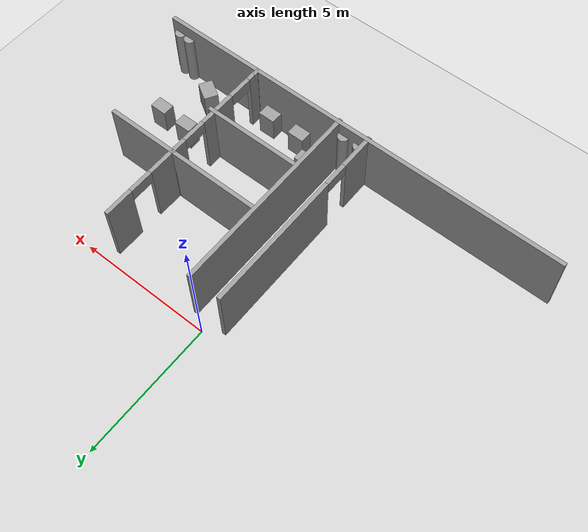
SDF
<sdf version="1.7">
 <world name="default">
  <model name="ground_plane">
   <static>1</static>
   <link name="link">
    <collision name="collision">
     <geometry><plane><normal>0 0 1</normal><size>100 100</size></plane></geometry>
     <surface>
      <contact><collide_bitmask>65535</collide_bitmask></contact>
      <friction><ode><mu>100</mu><mu2>50</mu2></ode></friction>
     </surface>
    </collision>
    <visual name="visual">
     <cast_shadows>0</cast_shadows>
     <geometry><plane><normal>0 0 1</normal><size>100 100</size></plane></geometry>
     <material>
      <script><uri>file://media/materials/scripts/gazebo.material</uri><name>Gazebo/Grey</name></script>
     </material>
    </visual>
   </link>
  </model>
  <model name="Untitled_0_clone_0">
   <link name="link_0">
    <inertial>
     <mass>1</mass>
     <inertia><ixx>0.145833</ixx><ixy>0</ixy><ixz>0</ixz><iyy>0.145833</iyy><iyz>0</iyz><izz>0.125</izz></inertia>
    </inertial>
    <visual name="visual">
     <geometry><cylinder><radius>0.2</radius><length>2</length></cylinder></geometry>
     <material>
      <lighting>1</lighting>
      <script><uri>file://media/materials/scripts/gazebo.material</uri><name>Gazebo/Grey</name></script>
      <shader type="pixel"><normal_map>__default__</normal_map></shader>
      <ambient>0.3 0.3 0.3 1</ambient>
      <diffuse>0.7 0.7 0.7 1</diffuse>
      <specular>0.01 0.01 0.01 1</specular>
      <emissive>0 0 0 1</emissive>
     </material>
    </visual>
    <collision name="collision">
     <geometry><cylinder><radius>0.2</radius><length>2</length></cylinder></geometry>
     <surface>
      <friction>
       <ode><mu>1</mu><mu2>1</mu2><fdir1>0 0 0</fdir1><slip1>0</slip1><slip2>0</slip2></ode>
       <torsional>
        <coefficient>1</coefficient>
        <patch_radius>0</patch_radius>
        <surface_radius>0</surface_radius>
        <use_patch_radius>1</use_patch_radius>
        <ode><slip>0</slip></ode>
       </torsional>
      </friction>
      <bounce><restitution_coefficient>0</restitution_coefficient><threshold>1e+06</threshold></bounce>
      <contact>
       <collide_without_contact>0</collide_without_contact>
       <collide_without_contact_bitmask>1</collide_without_contact_bitmask>
       <collide_bitmask>1</collide_bitmask>
       <ode>
        <soft_cfm>0</soft_cfm>
        <soft_erp>0.2</soft_erp>
        <kp>1e+13</kp>
        <kd>1</kd>
        <max_vel>0.01</max_vel>
        <min_depth>0</min_depth>
       </ode>
       <bullet>
        <split_impulse>1</split_impulse>
        <split_impulse_penetration_threshold>-0.01</split_impulse_penetration_threshold>
        <soft_cfm>0</soft_cfm>
        <soft_erp>0.2</soft_erp>
        <kp>1e+13</kp>
        <kd>1</kd>
       </bullet>
      </contact>
     </surface>
    </collision>
   </link>
   <static>0</static>
   <pose>7.60637 -7.67249 1 0 0 -0.232737</pose>
  </model>
  <model name="Untitled_0_clone_1">
   <link name="link_0">
    <inertial>
     <mass>1</mass>
     <inertia><ixx>0.145833</ixx><ixy>0</ixy><ixz>0</ixz><iyy>0.145833</iyy><iyz>0</iyz><izz>0.125</izz></inertia>
    </inertial>
    <visual name="visual">
     <geometry><cylinder><radius>0.2</radius><length>2</length></cylinder></geometry>
     <material>
      <lighting>1</lighting>
      <script><uri>file://media/materials/scripts/gazebo.material</uri><name>Gazebo/Grey</name></script>
      <shader type="pixel"><normal_map>__default__</normal_map></shader>
      <ambient>0.3 0.3 0.3 1</ambient>
      <diffuse>0.7 0.7 0.7 1</diffuse>
      <specular>0.01 0.01 0.01 1</specular>
      <emissive>0 0 0 1</emissive>
     </material>
    </visual>
    <collision name="collision">
     <geometry><cylinder><radius>0.2</radius><length>2</length></cylinder></geometry>
     <surface>
      <friction>
       <ode><mu>1</mu><mu2>1</mu2><fdir1>0 0 0</fdir1><slip1>0</slip1><slip2>0</slip2></ode>
       <torsional>
        <coefficient>1</coefficient>
        <patch_radius>0</patch_radius>
        <surface_radius>0</surface_radius>
        <use_patch_radius>1</use_patch_radius>
        <ode><slip>0</slip></ode>
       </torsional>
      </friction>
      <bounce><restitution_coefficient>0</restitution_coefficient><threshold>1e+06</threshold></bounce>
      <contact>
       <collide_without_contact>0</collide_without_contact>
       <collide_without_contact_bitmask>1</collide_without_contact_bitmask>
       <collide_bitmask>1</collide_bitmask>
       <ode>
        <soft_cfm>0</soft_cfm>
        <soft_erp>0.2</soft_erp>
        <kp>1e+13</kp>
        <kd>1</kd>
        <max_vel>0.01</max_vel>
        <min_depth>0</min_depth>
       </ode>
       <bullet>
        <split_impulse>1</split_impulse>
        <split_impulse_penetration_threshold>-0.01</split_impulse_penetration_threshold>
        <soft_cfm>0</soft_cfm>
        <soft_erp>0.2</soft_erp>
        <kp>1e+13</kp>
        <kd>1</kd>
       </bullet>
      </contact>
     </surface>
    </collision>
   </link>
   <static>0</static>
   <pose>7.17536 -7.6593 0.99999 0 -0 0.484716</pose>
  </model>
  <model name="Untitled_0_clone_2">
   <link name="link_0">
    <inertial>
     <mass>1</mass>
     <inertia><ixx>0.145833</ixx><ixy>0</ixy><ixz>0</ixz><iyy>0.145833</iyy><iyz>0</iyz><izz>0.125</izz></inertia>
    </inertial>
    <visual name="visual">
     <geometry><cylinder><radius>0.2</radius><length>2</length></cylinder></geometry>
     <material>
      <lighting>1</lighting>
      <script><uri>file://media/materials/scripts/gazebo.material</uri><name>Gazebo/Grey</name></script>
      <shader type="pixel"><normal_map>__default__</normal_map></shader>
      <ambient>0.3 0.3 0.3 1</ambient>
      <diffuse>0.7 0.7 0.7 1</diffuse>
      <specular>0.01 0.01 0.01 1</specular>
      <emissive>0 0 0 1</emissive>
     </material>
    </visual>
    <collision name="collision">
     <geometry><cylinder><radius>0.2</radius><length>2</length></cylinder></geometry>
     <surface>
      <friction>
       <ode><mu>1</mu><mu2>1</mu2><fdir1>0 0 0</fdir1><slip1>0</slip1><slip2>0</slip2></ode>
       <torsional>
        <coefficient>1</coefficient>
        <patch_radius>0</patch_radius>
        <surface_radius>0</surface_radius>
        <use_patch_radius>1</use_patch_radius>
        <ode><slip>0</slip></ode>
       </torsional>
      </friction>
      <bounce><restitution_coefficient>0</restitution_coefficient><threshold>1e+06</threshold></bounce>
      <contact>
       <collide_without_contact>0</collide_without_contact>
       <collide_without_contact_bitmask>1</collide_without_contact_bitmask>
       <collide_bitmask>1</collide_bitmask>
       <ode>
        <soft_cfm>0</soft_cfm>
        <soft_erp>0.2</soft_erp>
        <kp>1e+13</kp>
        <kd>1</kd>
        <max_vel>0.01</max_vel>
        <min_depth>0</min_depth>
       </ode>
       <bullet>
        <split_impulse>1</split_impulse>
        <split_impulse_penetration_threshold>-0.01</split_impulse_penetration_threshold>
        <soft_cfm>0</soft_cfm>
        <soft_erp>0.2</soft_erp>
        <kp>1e+13</kp>
        <kd>1</kd>
       </bullet>
      </contact>
     </surface>
    </collision>
   </link>
   <static>0</static>
   <pose>-0.314447 -7.67263 1 0 -0 0.09711</pose>
  </model>
  <model name="Untitled_0_clone_3">
   <link name="link_0">
    <inertial>
     <mass>1</mass>
     <inertia><ixx>0.145833</ixx><ixy>0</ixy><ixz>0</ixz><iyy>0.145833</iyy><iyz>0</iyz><izz>0.125</izz></inertia>
    </inertial>
    <visual name="visual">
     <geometry><cylinder><radius>0.2</radius><length>2</length></cylinder></geometry>
     <material>
      <lighting>1</lighting>
      <script><uri>file://media/materials/scripts/gazebo.material</uri><name>Gazebo/Grey</name></script>
      <shader type="pixel"><normal_map>__default__</normal_map></shader>
      <ambient>0.3 0.3 0.3 1</ambient>
      <diffuse>0.7 0.7 0.7 1</diffuse>
      <specular>0.01 0.01 0.01 1</specular>
      <emissive>0 0 0 1</emissive>
     </material>
    </visual>
    <collision name="collision">
     <geometry><cylinder><radius>0.2</radius><length>2</length></cylinder></geometry>
     <surface>
      <friction>
       <ode><mu>1</mu><mu2>1</mu2><fdir1>0 0 0</fdir1><slip1>0</slip1><slip2>0</slip2></ode>
       <torsional>
        <coefficient>1</coefficient>
        <patch_radius>0</patch_radius>
        <surface_radius>0</surface_radius>
        <use_patch_radius>1</use_patch_radius>
        <ode><slip>0</slip></ode>
       </torsional>
      </friction>
      <bounce><restitution_coefficient>0</restitution_coefficient><threshold>1e+06</threshold></bounce>
      <contact>
       <collide_without_contact>0</collide_without_contact>
       <collide_without_contact_bitmask>1</collide_without_contact_bitmask>
       <collide_bitmask>1</collide_bitmask>
       <ode>
        <soft_cfm>0</soft_cfm>
        <soft_erp>0.2</soft_erp>
        <kp>1e+13</kp>
        <kd>1</kd>
        <max_vel>0.01</max_vel>
        <min_depth>0</min_depth>
       </ode>
       <bullet>
        <split_impulse>1</split_impulse>
        <split_impulse_penetration_threshold>-0.01</split_impulse_penetration_threshold>
        <soft_cfm>0</soft_cfm>
        <soft_erp>0.2</soft_erp>
        <kp>1e+13</kp>
        <kd>1</kd>
       </bullet>
      </contact>
     </surface>
    </collision>
   </link>
   <static>0</static>
   <pose>0.314516 -7.6726 1 0 0 -0.024788</pose>
  </model>
  <model name="Untitled">
   <link name="Wall_2">
    <pose>-0.072532 -7.96044 0 0 -0 3.14159</pose>
    <visual name="Wall_2_Visual">
     <pose>0 0 1.25 0 -0 0</pose>
     <geometry><box><size>16 0.15 2.5</size></box></geometry>
     <material>
      <script><uri>file://media/materials/scripts/gazebo.material</uri><name>Gazebo/Grey</name></script>
      <ambient>1 1 1 1</ambient>
      <shader type="pixel"/>
     </material>
     <meta><layer>0</layer></meta>
    </visual>
    <collision name="Wall_2_Collision">
     <pose>0 0 1.25 0 -0 0</pose>
     <geometry><box><size>16 0.15 2.5</size></box></geometry>
     <surface>
      <friction>
       <ode><mu>1</mu><mu2>1</mu2><fdir1>0 0 0</fdir1><slip1>0</slip1><slip2>0</slip2></ode>
       <torsional>
        <coefficient>1</coefficient>
        <patch_radius>0</patch_radius>
        <surface_radius>0</surface_radius>
        <use_patch_radius>1</use_patch_radius>
        <ode><slip>0</slip></ode>
       </torsional>
      </friction>
      <bounce><restitution_coefficient>0</restitution_coefficient><threshold>1e+06</threshold></bounce>
      <contact>
       <collide_without_contact>0</collide_without_contact>
       <collide_without_contact_bitmask>1</collide_without_contact_bitmask>
       <collide_bitmask>1</collide_bitmask>
       <ode>
        <soft_cfm>0</soft_cfm>
        <soft_erp>0.2</soft_erp>
        <kp>1e+13</kp>
        <kd>1</kd>
        <max_vel>0.01</max_vel>
        <min_depth>0</min_depth>
       </ode>
       <bullet>
        <split_impulse>1</split_impulse>
        <split_impulse_penetration_threshold>-0.01</split_impulse_penetration_threshold>
        <soft_cfm>0</soft_cfm>
        <soft_erp>0.2</soft_erp>
        <kp>1e+13</kp>
        <kd>1</kd>
       </bullet>
      </contact>
     </surface>
    </collision>
   </link>
   <link name="Wall_24">
    <pose>-0.620932 -4.32411 0 0 0 -1.5708</pose>
    <visual name="Wall_24_Visual_0">
     <pose>-1.14448 0 1.25 0 -0 0</pose>
     <geometry><box><size>5.21104 0.15 2.5</size></box></geometry>
     <material>
      <script><uri>file://media/materials/scripts/gazebo.material</uri><name>Gazebo/Grey</name></script>
      <ambient>1 1 1 1</ambient>
      <shader type="pixel"/>
     </material>
     <meta><layer>0</layer></meta>
    </visual>
    <visual name="Wall_24_Visual_1">
     <pose>3.05552 0 1.25 0 -0 0</pose>
     <geometry><box><size>1.38896 0.15 2.5</size></box></geometry>
     <material>
      <script><uri>file://media/materials/scripts/gazebo.material</uri><name>Gazebo/Grey</name></script>
      <ambient>1 1 1 1</ambient>
      <shader type="pixel"/>
     </material>
     <meta><layer>0</layer></meta>
    </visual>
    <visual name="Wall_24_Visual_2">
     <pose>1.91104 0 2.25 0 -0 0</pose>
     <geometry><box><size>0.9 0.15 0.5</size></box></geometry>
     <material>
      <script><uri>file://media/materials/scripts/gazebo.material</uri><name>Gazebo/Grey</name></script>
      <ambient>1 1 1 1</ambient>
      <shader type="pixel"/>
     </material>
     <meta><layer>0</layer></meta>
    </visual>
    <collision name="Wall_24_Collision_0">
     <pose>-1.14448 0 1.25 0 -0 0</pose>
     <geometry><box><size>5.21104 0.15 2.5</size></box></geometry>
     <surface>
      <friction>
       <ode><mu>1</mu><mu2>1</mu2><fdir1>0 0 0</fdir1><slip1>0</slip1><slip2>0</slip2></ode>
       <torsional>
        <coefficient>1</coefficient>
        <patch_radius>0</patch_radius>
        <surface_radius>0</surface_radius>
        <use_patch_radius>1</use_patch_radius>
        <ode><slip>0</slip></ode>
       </torsional>
      </friction>
      <bounce><restitution_coefficient>0</restitution_coefficient><threshold>1e+06</threshold></bounce>
      <contact>
       <collide_without_contact>0</collide_without_contact>
       <collide_without_contact_bitmask>1</collide_without_contact_bitmask>
       <collide_bitmask>1</collide_bitmask>
       <ode>
        <soft_cfm>0</soft_cfm>
        <soft_erp>0.2</soft_erp>
        <kp>1e+13</kp>
        <kd>1</kd>
        <max_vel>0.01</max_vel>
        <min_depth>0</min_depth>
       </ode>
       <bullet>
        <split_impulse>1</split_impulse>
        <split_impulse_penetration_threshold>-0.01</split_impulse_penetration_threshold>
        <soft_cfm>0</soft_cfm>
        <soft_erp>0.2</soft_erp>
        <kp>1e+13</kp>
        <kd>1</kd>
       </bullet>
      </contact>
     </surface>
    </collision>
    <collision name="Wall_24_Collision_1">
     <pose>3.05552 0 1.25 0 -0 0</pose>
     <geometry><box><size>1.38896 0.15 2.5</size></box></geometry>
     <surface>
      <friction>
       <ode><mu>1</mu><mu2>1</mu2><fdir1>0 0 0</fdir1><slip1>0</slip1><slip2>0</slip2></ode>
       <torsional>
        <coefficient>1</coefficient>
        <patch_radius>0</patch_radius>
        <surface_radius>0</surface_radius>
        <use_patch_radius>1</use_patch_radius>
        <ode><slip>0</slip></ode>
       </torsional>
      </friction>
      <bounce><restitution_coefficient>0</restitution_coefficient><threshold>1e+06</threshold></bounce>
      <contact>
       <collide_without_contact>0</collide_without_contact>
       <collide_without_contact_bitmask>1</collide_without_contact_bitmask>
       <collide_bitmask>1</collide_bitmask>
       <ode>
        <soft_cfm>0</soft_cfm>
        <soft_erp>0.2</soft_erp>
        <kp>1e+13</kp>
        <kd>1</kd>
        <max_vel>0.01</max_vel>
        <min_depth>0</min_depth>
       </ode>
       <bullet>
        <split_impulse>1</split_impulse>
        <split_impulse_penetration_threshold>-0.01</split_impulse_penetration_threshold>
        <soft_cfm>0</soft_cfm>
        <soft_erp>0.2</soft_erp>
        <kp>1e+13</kp>
        <kd>1</kd>
       </bullet>
      </contact>
     </surface>
    </collision>
    <collision name="Wall_24_Collision_2">
     <pose>1.91104 0 2.25 0 -0 0</pose>
     <geometry><box><size>0.9 0.15 0.5</size></box></geometry>
     <surface>
      <friction>
       <ode><mu>1</mu><mu2>1</mu2><fdir1>0 0 0</fdir1><slip1>0</slip1><slip2>0</slip2></ode>
       <torsional>
        <coefficient>1</coefficient>
        <patch_radius>0</patch_radius>
        <surface_radius>0</surface_radius>
        <use_patch_radius>1</use_patch_radius>
        <ode><slip>0</slip></ode>
       </torsional>
      </friction>
      <bounce><restitution_coefficient>0</restitution_coefficient><threshold>1e+06</threshold></bounce>
      <contact>
       <collide_without_contact>0</collide_without_contact>
       <collide_without_contact_bitmask>1</collide_without_contact_bitmask>
       <collide_bitmask>1</collide_bitmask>
       <ode>
        <soft_cfm>0</soft_cfm>
        <soft_erp>0.2</soft_erp>
        <kp>1e+13</kp>
        <kd>1</kd>
        <max_vel>0.01</max_vel>
        <min_depth>0</min_depth>
       </ode>
       <bullet>
        <split_impulse>1</split_impulse>
        <split_impulse_penetration_threshold>-0.01</split_impulse_penetration_threshold>
        <soft_cfm>0</soft_cfm>
        <soft_erp>0.2</soft_erp>
        <kp>1e+13</kp>
        <kd>1</kd>
       </bullet>
      </contact>
     </surface>
    </collision>
   </link>
   <link name="Wall_42">
    <pose>0.567732 -4.32411 0 0 0 -1.5708</pose>
    <visual name="Wall_42_Visual">
     <pose>0 0 1.25 0 -0 0</pose>
     <geometry><box><size>7.5 0.15 2.5</size></box></geometry>
     <material>
      <script><uri>file://media/materials/scripts/gazebo.material</uri><name>Gazebo/Grey</name></script>
      <ambient>1 1 1 1</ambient>
      <shader type="pixel"/>
     </material>
     <meta><layer>0</layer></meta>
    </visual>
    <collision name="Wall_42_Collision">
     <pose>0 0 1.25 0 -0 0</pose>
     <geometry><box><size>7.5 0.15 2.5</size></box></geometry>
     <surface>
      <friction>
       <ode><mu>1</mu><mu2>1</mu2><fdir1>0 0 0</fdir1><slip1>0</slip1><slip2>0</slip2></ode>
       <torsional>
        <coefficient>1</coefficient>
        <patch_radius>0</patch_radius>
        <surface_radius>0</surface_radius>
        <use_patch_radius>1</use_patch_radius>
        <ode><slip>0</slip></ode>
       </torsional>
      </friction>
      <bounce><restitution_coefficient>0</restitution_coefficient><threshold>1e+06</threshold></bounce>
      <contact>
       <collide_without_contact>0</collide_without_contact>
       <collide_without_contact_bitmask>1</collide_without_contact_bitmask>
       <collide_bitmask>1</collide_bitmask>
       <ode>
        <soft_cfm>0</soft_cfm>
        <soft_erp>0.2</soft_erp>
        <kp>1e+13</kp>
        <kd>1</kd>
        <max_vel>0.01</max_vel>
        <min_depth>0</min_depth>
       </ode>
       <bullet>
        <split_impulse>1</split_impulse>
        <split_impulse_penetration_threshold>-0.01</split_impulse_penetration_threshold>
        <soft_cfm>0</soft_cfm>
        <soft_erp>0.2</soft_erp>
        <kp>1e+13</kp>
        <kd>1</kd>
       </bullet>
      </contact>
     </surface>
    </collision>
   </link>
   <link name="Wall_61">
    <pose>4.05236 -4.25231 0 0 0 -1.5708</pose>
    <visual name="Wall_61_Visual_0">
     <pose>-3.081 0 1.25 0 -0 0</pose>
     <geometry><box><size>1.08801 0.15 2.5</size></box></geometry>
     <material>
      <script><uri>file://media/materials/scripts/gazebo.material</uri><name>Gazebo/Grey</name></script>
      <ambient>1 1 1 1</ambient>
      <shader type="pixel"/>
     </material>
     <meta><layer>0</layer></meta>
    </visual>
    <visual name="Wall_61_Visual_1">
     <pose>-0.82348 0 1.25 0 -0 0</pose>
     <geometry><box><size>1.62702 0.15 2.5</size></box></geometry>
     <material>
      <script><uri>file://media/materials/scripts/gazebo.material</uri><name>Gazebo/Grey</name></script>
      <ambient>1 1 1 1</ambient>
      <shader type="pixel"/>
     </material>
     <meta><layer>0</layer></meta>
    </visual>
    <visual name="Wall_61_Visual_2">
     <pose>1.59714 0 1.25 0 -0 0</pose>
     <geometry><box><size>1.41422 0.15 2.5</size></box></geometry>
     <material>
      <script><uri>file://media/materials/scripts/gazebo.material</uri><name>Gazebo/Grey</name></script>
      <ambient>1 1 1 1</ambient>
      <shader type="pixel"/>
     </material>
     <meta><layer>0</layer></meta>
    </visual>
    <visual name="Wall_61_Visual_3">
     <pose>3.41462 0 1.25 0 -0 0</pose>
     <geometry><box><size>0.420753 0.15 2.5</size></box></geometry>
     <material>
      <script><uri>file://media/materials/scripts/gazebo.material</uri><name>Gazebo/Grey</name></script>
      <ambient>1 1 1 1</ambient>
      <shader type="pixel"/>
     </material>
     <meta><layer>0</layer></meta>
    </visual>
    <visual name="Wall_61_Visual_4">
     <pose>-2.08699 0 2.25 0 -0 0</pose>
     <geometry><box><size>0.9 0.15 0.5</size></box></geometry>
     <material>
      <script><uri>file://media/materials/scripts/gazebo.material</uri><name>Gazebo/Grey</name></script>
      <ambient>1 1 1 1</ambient>
      <shader type="pixel"/>
     </material>
     <meta><layer>0</layer></meta>
    </visual>
    <visual name="Wall_61_Visual_5">
     <pose>0.44003 0 2.25 0 -0 0</pose>
     <geometry><box><size>0.9 0.15 0.5</size></box></geometry>
     <material>
      <script><uri>file://media/materials/scripts/gazebo.material</uri><name>Gazebo/Grey</name></script>
      <ambient>1 1 1 1</ambient>
      <shader type="pixel"/>
     </material>
     <meta><layer>0</layer></meta>
    </visual>
    <visual name="Wall_61_Visual_6">
     <pose>2.75425 0 2.25 0 -0 0</pose>
     <geometry><box><size>0.9 0.15 0.5</size></box></geometry>
     <material>
      <script><uri>file://media/materials/scripts/gazebo.material</uri><name>Gazebo/Grey</name></script>
      <ambient>1 1 1 1</ambient>
      <shader type="pixel"/>
     </material>
     <meta><layer>0</layer></meta>
    </visual>
    <collision name="Wall_61_Collision_0">
     <pose>-3.081 0 1.25 0 -0 0</pose>
     <geometry><box><size>1.08801 0.15 2.5</size></box></geometry>
     <surface>
      <friction>
       <ode><mu>1</mu><mu2>1</mu2><fdir1>0 0 0</fdir1><slip1>0</slip1><slip2>0</slip2></ode>
       <torsional>
        <coefficient>1</coefficient>
        <patch_radius>0</patch_radius>
        <surface_radius>0</surface_radius>
        <use_patch_radius>1</use_patch_radius>
        <ode><slip>0</slip></ode>
       </torsional>
      </friction>
      <bounce><restitution_coefficient>0</restitution_coefficient><threshold>1e+06</threshold></bounce>
      <contact>
       <collide_without_contact>0</collide_without_contact>
       <collide_without_contact_bitmask>1</collide_without_contact_bitmask>
       <collide_bitmask>1</collide_bitmask>
       <ode>
        <soft_cfm>0</soft_cfm>
        <soft_erp>0.2</soft_erp>
        <kp>1e+13</kp>
        <kd>1</kd>
        <max_vel>0.01</max_vel>
        <min_depth>0</min_depth>
       </ode>
       <bullet>
        <split_impulse>1</split_impulse>
        <split_impulse_penetration_threshold>-0.01</split_impulse_penetration_threshold>
        <soft_cfm>0</soft_cfm>
        <soft_erp>0.2</soft_erp>
        <kp>1e+13</kp>
        <kd>1</kd>
       </bullet>
      </contact>
     </surface>
    </collision>
    <collision name="Wall_61_Collision_1">
     <pose>-0.82348 0 1.25 0 -0 0</pose>
     <geometry><box><size>1.62702 0.15 2.5</size></box></geometry>
     <surface>
      <friction>
       <ode><mu>1</mu><mu2>1</mu2><fdir1>0 0 0</fdir1><slip1>0</slip1><slip2>0</slip2></ode>
       <torsional>
        <coefficient>1</coefficient>
        <patch_radius>0</patch_radius>
        <surface_radius>0</surface_radius>
        <use_patch_radius>1</use_patch_radius>
        <ode><slip>0</slip></ode>
       </torsional>
      </friction>
      <bounce><restitution_coefficient>0</restitution_coefficient><threshold>1e+06</threshold></bounce>
      <contact>
       <collide_without_contact>0</collide_without_contact>
       <collide_without_contact_bitmask>1</collide_without_contact_bitmask>
       <collide_bitmask>1</collide_bitmask>
       <ode>
        <soft_cfm>0</soft_cfm>
        <soft_erp>0.2</soft_erp>
        <kp>1e+13</kp>
        <kd>1</kd>
        <max_vel>0.01</max_vel>
        <min_depth>0</min_depth>
       </ode>
       <bullet>
        <split_impulse>1</split_impulse>
        <split_impulse_penetration_threshold>-0.01</split_impulse_penetration_threshold>
        <soft_cfm>0</soft_cfm>
        <soft_erp>0.2</soft_erp>
        <kp>1e+13</kp>
        <kd>1</kd>
       </bullet>
      </contact>
     </surface>
    </collision>
    <collision name="Wall_61_Collision_2">
     <pose>1.59714 0 1.25 0 -0 0</pose>
     <geometry><box><size>1.41422 0.15 2.5</size></box></geometry>
     <surface>
      <friction>
       <ode><mu>1</mu><mu2>1</mu2><fdir1>0 0 0</fdir1><slip1>0</slip1><slip2>0</slip2></ode>
       <torsional>
        <coefficient>1</coefficient>
        <patch_radius>0</patch_radius>
        <surface_radius>0</surface_radius>
        <use_patch_radius>1</use_patch_radius>
        <ode><slip>0</slip></ode>
       </torsional>
      </friction>
      <bounce><restitution_coefficient>0</restitution_coefficient><threshold>1e+06</threshold></bounce>
      <contact>
       <collide_without_contact>0</collide_without_contact>
       <collide_without_contact_bitmask>1</collide_without_contact_bitmask>
       <collide_bitmask>1</collide_bitmask>
       <ode>
        <soft_cfm>0</soft_cfm>
        <soft_erp>0.2</soft_erp>
        <kp>1e+13</kp>
        <kd>1</kd>
        <max_vel>0.01</max_vel>
        <min_depth>0</min_depth>
       </ode>
       <bullet>
        <split_impulse>1</split_impulse>
        <split_impulse_penetration_threshold>-0.01</split_impulse_penetration_threshold>
        <soft_cfm>0</soft_cfm>
        <soft_erp>0.2</soft_erp>
        <kp>1e+13</kp>
        <kd>1</kd>
       </bullet>
      </contact>
     </surface>
    </collision>
    <collision name="Wall_61_Collision_3">
     <pose>3.41462 0 1.25 0 -0 0</pose>
     <geometry><box><size>0.420753 0.15 2.5</size></box></geometry>
     <surface>
      <friction>
       <ode><mu>1</mu><mu2>1</mu2><fdir1>0 0 0</fdir1><slip1>0</slip1><slip2>0</slip2></ode>
       <torsional>
        <coefficient>1</coefficient>
        <patch_radius>0</patch_radius>
        <surface_radius>0</surface_radius>
        <use_patch_radius>1</use_patch_radius>
        <ode><slip>0</slip></ode>
       </torsional>
      </friction>
      <bounce><restitution_coefficient>0</restitution_coefficient><threshold>1e+06</threshold></bounce>
      <contact>
       <collide_without_contact>0</collide_without_contact>
       <collide_without_contact_bitmask>1</collide_without_contact_bitmask>
       <collide_bitmask>1</collide_bitmask>
       <ode>
        <soft_cfm>0</soft_cfm>
        <soft_erp>0.2</soft_erp>
        <kp>1e+13</kp>
        <kd>1</kd>
        <max_vel>0.01</max_vel>
        <min_depth>0</min_depth>
       </ode>
       <bullet>
        <split_impulse>1</split_impulse>
        <split_impulse_penetration_threshold>-0.01</split_impulse_penetration_threshold>
        <soft_cfm>0</soft_cfm>
        <soft_erp>0.2</soft_erp>
        <kp>1e+13</kp>
        <kd>1</kd>
       </bullet>
      </contact>
     </surface>
    </collision>
    <collision name="Wall_61_Collision_4">
     <pose>-2.08699 0 2.25 0 -0 0</pose>
     <geometry><box><size>0.9 0.15 0.5</size></box></geometry>
     <surface>
      <friction>
       <ode><mu>1</mu><mu2>1</mu2><fdir1>0 0 0</fdir1><slip1>0</slip1><slip2>0</slip2></ode>
       <torsional>
        <coefficient>1</coefficient>
        <patch_radius>0</patch_radius>
        <surface_radius>0</surface_radius>
        <use_patch_radius>1</use_patch_radius>
        <ode><slip>0</slip></ode>
       </torsional>
      </friction>
      <bounce><restitution_coefficient>0</restitution_coefficient><threshold>1e+06</threshold></bounce>
      <contact>
       <collide_without_contact>0</collide_without_contact>
       <collide_without_contact_bitmask>1</collide_without_contact_bitmask>
       <collide_bitmask>1</collide_bitmask>
       <ode>
        <soft_cfm>0</soft_cfm>
        <soft_erp>0.2</soft_erp>
        <kp>1e+13</kp>
        <kd>1</kd>
        <max_vel>0.01</max_vel>
        <min_depth>0</min_depth>
       </ode>
       <bullet>
        <split_impulse>1</split_impulse>
        <split_impulse_penetration_threshold>-0.01</split_impulse_penetration_threshold>
        <soft_cfm>0</soft_cfm>
        <soft_erp>0.2</soft_erp>
        <kp>1e+13</kp>
        <kd>1</kd>
       </bullet>
      </contact>
     </surface>
    </collision>
    <collision name="Wall_61_Collision_5">
     <pose>0.44003 0 2.25 0 -0 0</pose>
     <geometry><box><size>0.9 0.15 0.5</size></box></geometry>
     <surface>
      <friction>
       <ode><mu>1</mu><mu2>1</mu2><fdir1>0 0 0</fdir1><slip1>0</slip1><slip2>0</slip2></ode>
       <torsional>
        <coefficient>1</coefficient>
        <patch_radius>0</patch_radius>
        <surface_radius>0</surface_radius>
        <use_patch_radius>1</use_patch_radius>
        <ode><slip>0</slip></ode>
       </torsional>
      </friction>
      <bounce><restitution_coefficient>0</restitution_coefficient><threshold>1e+06</threshold></bounce>
      <contact>
       <collide_without_contact>0</collide_without_contact>
       <collide_without_contact_bitmask>1</collide_without_contact_bitmask>
       <collide_bitmask>1</collide_bitmask>
       <ode>
        <soft_cfm>0</soft_cfm>
        <soft_erp>0.2</soft_erp>
        <kp>1e+13</kp>
        <kd>1</kd>
        <max_vel>0.01</max_vel>
        <min_depth>0</min_depth>
       </ode>
       <bullet>
        <split_impulse>1</split_impulse>
        <split_impulse_penetration_threshold>-0.01</split_impulse_penetration_threshold>
        <soft_cfm>0</soft_cfm>
        <soft_erp>0.2</soft_erp>
        <kp>1e+13</kp>
        <kd>1</kd>
       </bullet>
      </contact>
     </surface>
    </collision>
    <collision name="Wall_61_Collision_6">
     <pose>2.75425 0 2.25 0 -0 0</pose>
     <geometry><box><size>0.9 0.15 0.5</size></box></geometry>
     <surface>
      <friction>
       <ode><mu>1</mu><mu2>1</mu2><fdir1>0 0 0</fdir1><slip1>0</slip1><slip2>0</slip2></ode>
       <torsional>
        <coefficient>1</coefficient>
        <patch_radius>0</patch_radius>
        <surface_radius>0</surface_radius>
        <use_patch_radius>1</use_patch_radius>
        <ode><slip>0</slip></ode>
       </torsional>
      </friction>
      <bounce><restitution_coefficient>0</restitution_coefficient><threshold>1e+06</threshold></bounce>
      <contact>
       <collide_without_contact>0</collide_without_contact>
       <collide_without_contact_bitmask>1</collide_without_contact_bitmask>
       <collide_bitmask>1</collide_bitmask>
       <ode>
        <soft_cfm>0</soft_cfm>
        <soft_erp>0.2</soft_erp>
        <kp>1e+13</kp>
        <kd>1</kd>
        <max_vel>0.01</max_vel>
        <min_depth>0</min_depth>
       </ode>
       <bullet>
        <split_impulse>1</split_impulse>
        <split_impulse_penetration_threshold>-0.01</split_impulse_penetration_threshold>
        <soft_cfm>0</soft_cfm>
        <soft_erp>0.2</soft_erp>
        <kp>1e+13</kp>
        <kd>1</kd>
       </bullet>
      </contact>
     </surface>
    </collision>
   </link>
   <link name="Wall_62">
    <pose>4.05236 -7.85231 0 0 0 -1.5708</pose>
    <visual name="Wall_62_Visual">
     <pose>0 0 1.25 0 -0 0</pose>
     <geometry><box><size>0.25 0.15 2.5</size></box></geometry>
     <material>
      <script><uri>file://media/materials/scripts/gazebo.material</uri><name>Gazebo/Grey</name></script>
      <ambient>1 1 1 1</ambient>
      <shader type="pixel"/>
     </material>
     <meta><layer>0</layer></meta>
    </visual>
    <collision name="Wall_62_Collision">
     <pose>0 0 1.25 0 -0 0</pose>
     <geometry><box><size>0.25 0.15 2.5</size></box></geometry>
     <surface>
      <friction>
       <ode><mu>1</mu><mu2>1</mu2><fdir1>0 0 0</fdir1><slip1>0</slip1><slip2>0</slip2></ode>
       <torsional>
        <coefficient>1</coefficient>
        <patch_radius>0</patch_radius>
        <surface_radius>0</surface_radius>
        <use_patch_radius>1</use_patch_radius>
        <ode><slip>0</slip></ode>
       </torsional>
      </friction>
      <bounce><restitution_coefficient>0</restitution_coefficient><threshold>1e+06</threshold></bounce>
      <contact>
       <collide_without_contact>0</collide_without_contact>
       <collide_without_contact_bitmask>1</collide_without_contact_bitmask>
       <collide_bitmask>1</collide_bitmask>
       <ode>
        <soft_cfm>0</soft_cfm>
        <soft_erp>0.2</soft_erp>
        <kp>1e+13</kp>
        <kd>1</kd>
        <max_vel>0.01</max_vel>
        <min_depth>0</min_depth>
       </ode>
       <bullet>
        <split_impulse>1</split_impulse>
        <split_impulse_penetration_threshold>-0.01</split_impulse_penetration_threshold>
        <soft_cfm>0</soft_cfm>
        <soft_erp>0.2</soft_erp>
        <kp>1e+13</kp>
        <kd>1</kd>
       </bullet>
      </contact>
     </surface>
    </collision>
   </link>
   <link name="Wall_64">
    <pose>2.34913 -3.65493 0 0 -0 0</pose>
    <visual name="Wall_64_Visual">
     <pose>0 0 1.25 0 -0 0</pose>
     <geometry><box><size>3.5 0.15 2.5</size></box></geometry>
     <material>
      <script><uri>file://media/materials/scripts/gazebo.material</uri><name>Gazebo/Grey</name></script>
      <ambient>1 1 1 1</ambient>
      <shader type="pixel"/>
     </material>
     <meta><layer>0</layer></meta>
    </visual>
    <collision name="Wall_64_Collision">
     <pose>0 0 1.25 0 -0 0</pose>
     <geometry><box><size>3.5 0.15 2.5</size></box></geometry>
     <surface>
      <friction>
       <ode><mu>1</mu><mu2>1</mu2><fdir1>0 0 0</fdir1><slip1>0</slip1><slip2>0</slip2></ode>
       <torsional>
        <coefficient>1</coefficient>
        <patch_radius>0</patch_radius>
        <surface_radius>0</surface_radius>
        <use_patch_radius>1</use_patch_radius>
        <ode><slip>0</slip></ode>
       </torsional>
      </friction>
      <bounce><restitution_coefficient>0</restitution_coefficient><threshold>1e+06</threshold></bounce>
      <contact>
       <collide_without_contact>0</collide_without_contact>
       <collide_without_contact_bitmask>1</collide_without_contact_bitmask>
       <collide_bitmask>1</collide_bitmask>
       <ode>
        <soft_cfm>0</soft_cfm>
        <soft_erp>0.2</soft_erp>
        <kp>1e+13</kp>
        <kd>1</kd>
        <max_vel>0.01</max_vel>
        <min_depth>0</min_depth>
       </ode>
       <bullet>
        <split_impulse>1</split_impulse>
        <split_impulse_penetration_threshold>-0.01</split_impulse_penetration_threshold>
        <soft_cfm>0</soft_cfm>
        <soft_erp>0.2</soft_erp>
        <kp>1e+13</kp>
        <kd>1</kd>
       </bullet>
      </contact>
     </surface>
    </collision>
   </link>
   <link name="Wall_65">
    <pose>5.32413 -3.65493 0 0 -0 0</pose>
    <visual name="Wall_65_Visual">
     <pose>0 0 1.25 0 -0 0</pose>
     <geometry><box><size>2.75 0.15 2.5</size></box></geometry>
     <material>
      <script><uri>file://media/materials/scripts/gazebo.material</uri><name>Gazebo/Grey</name></script>
      <ambient>1 1 1 1</ambient>
      <shader type="pixel"/>
     </material>
     <meta><layer>0</layer></meta>
    </visual>
    <collision name="Wall_65_Collision">
     <pose>0 0 1.25 0 -0 0</pose>
     <geometry><box><size>2.75 0.15 2.5</size></box></geometry>
     <surface>
      <friction>
       <ode><mu>1</mu><mu2>1</mu2><fdir1>0 0 0</fdir1><slip1>0</slip1><slip2>0</slip2></ode>
       <torsional>
        <coefficient>1</coefficient>
        <patch_radius>0</patch_radius>
        <surface_radius>0</surface_radius>
        <use_patch_radius>1</use_patch_radius>
        <ode><slip>0</slip></ode>
       </torsional>
      </friction>
      <bounce><restitution_coefficient>0</restitution_coefficient><threshold>1e+06</threshold></bounce>
      <contact>
       <collide_without_contact>0</collide_without_contact>
       <collide_without_contact_bitmask>1</collide_without_contact_bitmask>
       <collide_bitmask>1</collide_bitmask>
       <ode>
        <soft_cfm>0</soft_cfm>
        <soft_erp>0.2</soft_erp>
        <kp>1e+13</kp>
        <kd>1</kd>
        <max_vel>0.01</max_vel>
        <min_depth>0</min_depth>
       </ode>
       <bullet>
        <split_impulse>1</split_impulse>
        <split_impulse_penetration_threshold>-0.01</split_impulse_penetration_threshold>
        <soft_cfm>0</soft_cfm>
        <soft_erp>0.2</soft_erp>
        <kp>1e+13</kp>
        <kd>1</kd>
       </bullet>
      </contact>
     </surface>
    </collision>
   </link>
   <link name="Wall_67">
    <pose>2.39433 -5.72975 0 0 -0 0</pose>
    <visual name="Wall_67_Visual">
     <pose>0 0 1.25 0 -0 0</pose>
     <geometry><box><size>3.75 0.15 2.5</size></box></geometry>
     <material>
      <script><uri>file://media/materials/scripts/gazebo.material</uri><name>Gazebo/Grey</name></script>
      <ambient>1 1 1 1</ambient>
      <shader type="pixel"/>
     </material>
     <meta><layer>0</layer></meta>
    </visual>
    <collision name="Wall_67_Collision">
     <pose>0 0 1.25 0 -0 0</pose>
     <geometry><box><size>3.75 0.15 2.5</size></box></geometry>
     <surface>
      <friction>
       <ode><mu>1</mu><mu2>1</mu2><fdir1>0 0 0</fdir1><slip1>0</slip1><slip2>0</slip2></ode>
       <torsional>
        <coefficient>1</coefficient>
        <patch_radius>0</patch_radius>
        <surface_radius>0</surface_radius>
        <use_patch_radius>1</use_patch_radius>
        <ode><slip>0</slip></ode>
       </torsional>
      </friction>
      <bounce><restitution_coefficient>0</restitution_coefficient><threshold>1e+06</threshold></bounce>
      <contact>
       <collide_without_contact>0</collide_without_contact>
       <collide_without_contact_bitmask>1</collide_without_contact_bitmask>
       <collide_bitmask>1</collide_bitmask>
       <ode>
        <soft_cfm>0</soft_cfm>
        <soft_erp>0.2</soft_erp>
        <kp>1e+13</kp>
        <kd>1</kd>
        <max_vel>0.01</max_vel>
        <min_depth>0</min_depth>
       </ode>
       <bullet>
        <split_impulse>1</split_impulse>
        <split_impulse_penetration_threshold>-0.01</split_impulse_penetration_threshold>
        <soft_cfm>0</soft_cfm>
        <soft_erp>0.2</soft_erp>
        <kp>1e+13</kp>
        <kd>1</kd>
       </bullet>
      </contact>
     </surface>
    </collision>
   </link>
   <static>1</static>
   <pose>0.030064 0.19251 0 0 -0 0</pose>
  </model>
  <model name="unit_box_1">
   <pose>5.7381 -6.91169 0.5 0 -0 -0.545815</pose>
   <link name="link">
    <inertial>
     <mass>1</mass>
     <inertia>
      <ixx>0.166667</ixx>
      <ixy>0</ixy>
      <ixz>0</ixz>
      <iyy>0.166667</iyy>
      <iyz>0</iyz>
      <izz>0.166667</izz>
     </inertia>
    </inertial>
    <collision name="collision"><geometry><box><size>0.716474 0.515009 1</size></box></geometry></collision>
    <visual name="visual">
     <geometry><box><size>0.716474 0.515009 1</size></box></geometry>
     <material>
      <script><name>Gazebo/Grey</name><uri>file://media/materials/scripts/gazebo.material</uri></script>
     </material>
    </visual>
   </link>
  </model>
  <model name="unit_box_2_clone_17">
   <pose>2.03977 -5.84771 0.5 0 -0 0.001132</pose>
   <link name="link">
    <inertial>
     <mass>1</mass>
     <inertia>
      <ixx>0.166667</ixx>
      <ixy>0</ixy>
      <ixz>0</ixz>
      <iyy>0.166667</iyy>
      <iyz>0</iyz>
      <izz>0.166667</izz>
     </inertia>
    </inertial>
    <collision name="collision"><geometry><box><size>0.632241 0.450252 1</size></box></geometry></collision>
    <visual name="visual">
     <geometry><box><size>0.632241 0.450252 1</size></box></geometry>
     <material>
      <script><name>Gazebo/Grey</name><uri>file://media/materials/scripts/gazebo.material</uri></script>
     </material>
    </visual>
   </link>
  </model>
  <model name="unit_box_2_clone_18">
   <pose>3.39523 -5.83736 0.5 0 -0 0</pose>
   <link name="link">
    <inertial>
     <mass>1</mass>
     <inertia>
      <ixx>0.166667</ixx>
      <ixy>0</ixy>
      <ixz>0</ixz>
      <iyy>0.166667</iyy>
      <iyz>0</iyz>
      <izz>0.166667</izz>
     </inertia>
    </inertial>
    <collision name="collision"><geometry><box><size>0.632241 0.450252 1</size></box></geometry></collision>
    <visual name="visual">
     <geometry><box><size>0.632241 0.450252 1</size></box></geometry>
     <material>
      <script><name>Gazebo/Grey</name><uri>file://media/materials/scripts/gazebo.material</uri></script>
     </material>
    </visual>
   </link>
  </model>
  <model name="unit_box_2_clone_19">
   <pose>2.03109 -7.4506 0.5 0 -0 0.001132</pose>
   <link name="link">
    <inertial>
     <mass>1</mass>
     <inertia>
      <ixx>0.166667</ixx>
      <ixy>0</ixy>
      <ixz>0</ixz>
      <iyy>0.166667</iyy>
      <iyz>0</iyz>
      <izz>0.166667</izz>
     </inertia>
    </inertial>
    <collision name="collision"><geometry><box><size>0.632241 0.450252 1</size></box></geometry></collision>
    <visual name="visual">
     <geometry><box><size>0.632241 0.450252 1</size></box></geometry>
     <material>
      <script><name>Gazebo/Grey</name><uri>file://media/materials/scripts/gazebo.material</uri></script>
     </material>
    </visual>
   </link>
  </model>
  <model name="unit_box_2_clone_20">
   <pose>3.33497 -7.4678 0.5 0 0 -2e-06</pose>
   <link name="link">
    <inertial>
     <mass>1</mass>
     <inertia>
      <ixx>0.166667</ixx>
      <ixy>0</ixy>
      <ixz>0</ixz>
      <iyy>0.166667</iyy>
      <iyz>0</iyz>
      <izz>0.166667</izz>
     </inertia>
    </inertial>
    <collision name="collision"><geometry><box><size>0.632241 0.450252 1</size></box></geometry></collision>
    <visual name="visual">
     <geometry><box><size>0.632241 0.450252 1</size></box></geometry>
     <material>
      <script><name>Gazebo/Grey</name><uri>file://media/materials/scripts/gazebo.material</uri></script>
     </material>
    </visual>
   </link>
  </model>
  <model name="unit_box_2_clone_21">
   <pose>1.18667 -6.74573 0.5 0 -0 0.001132</pose>
   <link name="link">
    <inertial>
     <mass>1</mass>
     <inertia>
      <ixx>0.166667</ixx>
      <ixy>0</ixy>
      <ixz>0</ixz>
      <iyy>0.166667</iyy>
      <iyz>0</iyz>
      <izz>0.166667</izz>
     </inertia>
    </inertial>
    <collision name="collision"><geometry><box><size>0.632241 0.450252 1</size></box></geometry></collision>
    <visual name="visual">
     <geometry><box><size>0.632241 0.450252 1</size></box></geometry>
     <material>
      <script><name>Gazebo/Grey</name><uri>file://media/materials/scripts/gazebo.material</uri></script>
     </material>
    </visual>
   </link>
  </model>
  <model name="unit_box_2_clone_22">
   <pose>5.30549 -3.92782 0.5 0 -0 0.001132</pose>
   <link name="link">
    <inertial>
     <mass>1</mass>
     <inertia>
      <ixx>0.166667</ixx>
      <ixy>0</ixy>
      <ixz>0</ixz>
      <iyy>0.166667</iyy>
      <iyz>0</iyz>
      <izz>0.166667</izz>
     </inertia>
    </inertial>
    <collision name="collision"><geometry><box><size>0.632241 0.450252 1</size></box></geometry></collision>
    <visual name="visual">
     <geometry><box><size>0.632241 0.450252 1</size></box></geometry>
     <material>
      <script><name>Gazebo/Grey</name><uri>file://media/materials/scripts/gazebo.material</uri></script>
     </material>
    </visual>
   </link>
  </model>
  <model name="unit_box_2_clone_23">
   <pose>6.48416 -3.8776 0.5 0 -0 0.001132</pose>
   <link name="link">
    <inertial>
     <mass>1</mass>
     <inertia>
      <ixx>0.166667</ixx>
      <ixy>0</ixy>
      <ixz>0</ixz>
      <iyy>0.166667</iyy>
      <iyz>0</iyz>
      <izz>0.166667</izz>
     </inertia>
    </inertial>
    <collision name="collision"><geometry><box><size>0.632241 0.450252 1</size></box></geometry></collision>
    <visual name="visual">
     <geometry><box><size>0.632241 0.450252 1</size></box></geometry>
     <material>
      <script><name>Gazebo/Grey</name><uri>file://media/materials/scripts/gazebo.material</uri></script>
     </material>
    </visual>
   </link>
  </model>
  <model name="unit_box_2_clone_24">
   <pose>5.35979 -5.3227 0.5 0 -0 0.001132</pose>
   <link name="link">
    <inertial>
     <mass>1</mass>
     <inertia>
      <ixx>0.166667</ixx>
      <ixy>0</ixy>
      <ixz>0</ixz>
      <iyy>0.166667</iyy>
      <iyz>0</iyz>
      <izz>0.166667</izz>
     </inertia>
    </inertial>
    <collision name="collision"><geometry><box><size>0.632241 0.450252 1</size></box></geometry></collision>
    <visual name="visual">
     <geometry><box><size>0.632241 0.450252 1</size></box></geometry>
     <material>
      <script><name>Gazebo/Grey</name><uri>file://media/materials/scripts/gazebo.material</uri></script>
     </material>
    </visual>
   </link>
  </model>
  <model name="unit_box_2_clone_25">
   <pose>6.53222 -5.36504 0.5 0 -0 0.001132</pose>
   <link name="link">
    <inertial>
     <mass>1</mass>
     <inertia>
      <ixx>0.166667</ixx>
      <ixy>0</ixy>
      <ixz>0</ixz>
      <iyy>0.166667</iyy>
      <iyz>0</iyz>
      <izz>0.166667</izz>
     </inertia>
    </inertial>
    <collision name="collision"><geometry><box><size>0.632241 0.450252 1</size></box></geometry></collision>
    <visual name="visual">
     <geometry><box><size>0.632241 0.450252 1</size></box></geometry>
     <material>
      <script><name>Gazebo/Grey</name><uri>file://media/materials/scripts/gazebo.material</uri></script>
     </material>
    </visual>
   </link>
  </model>
 </world>
</sdf>
